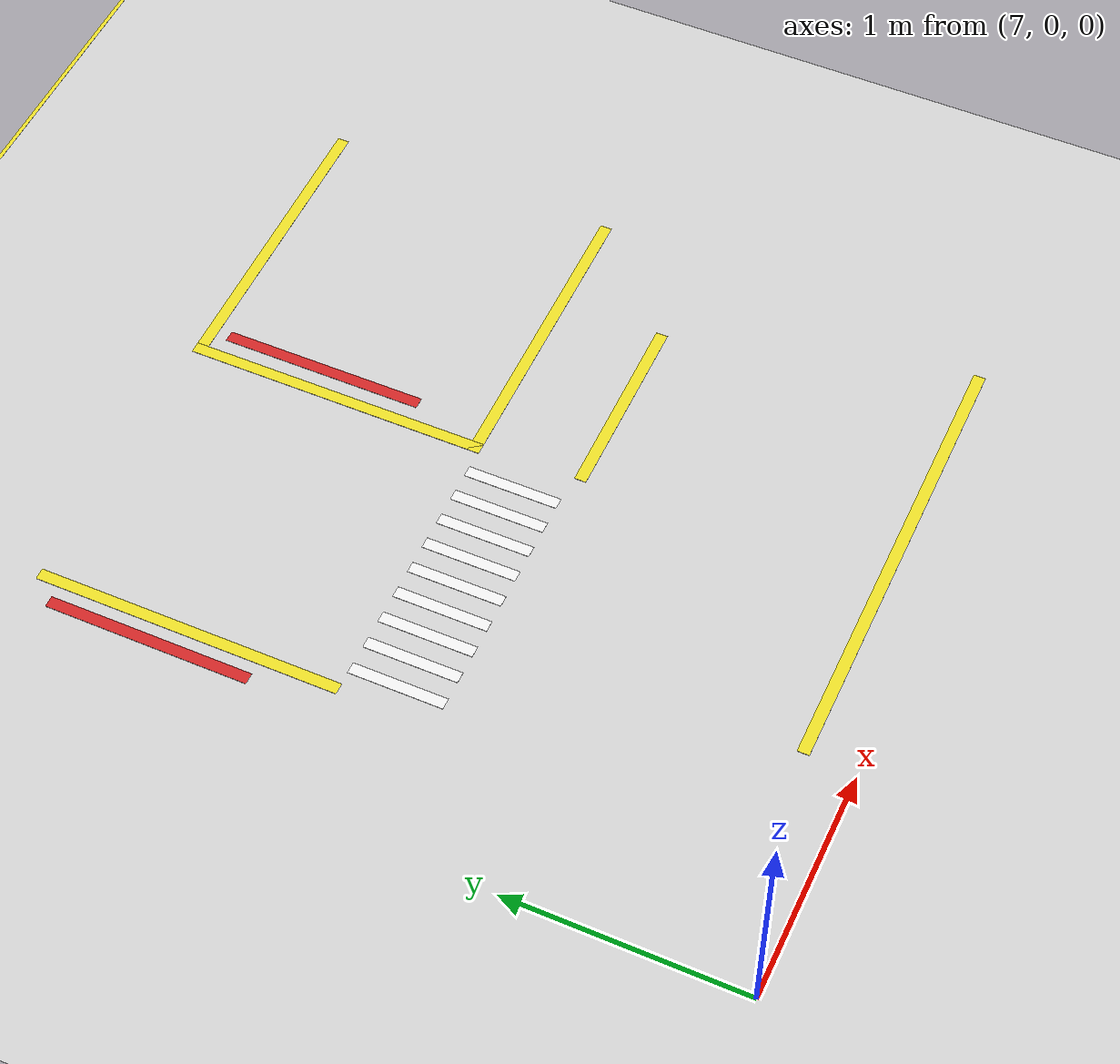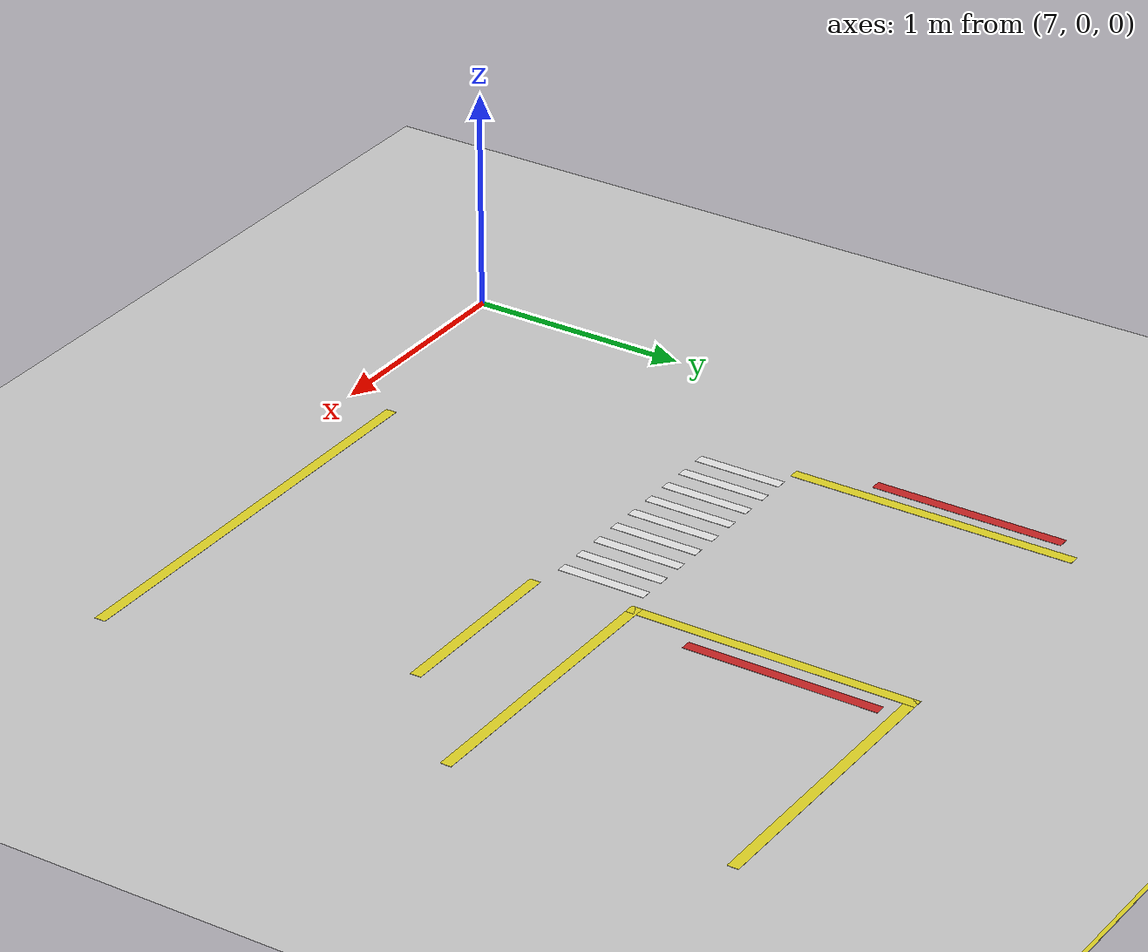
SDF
<sdf version="1.6">
 <world name="default">
  <model name="ground_plane">
   <static>1</static>
   <link name="link">
    <collision name="collision">
     <geometry><plane><normal>0 0 1</normal><size>100 100</size></plane></geometry>
     <surface><friction><ode><mu>100</mu><mu2>50</mu2></ode></friction></surface>
    </collision>
    <visual name="visual">
     <cast_shadows>0</cast_shadows>
     <geometry><plane><normal>0 0 1</normal><size>100 100</size></plane></geometry>
     <material>
      <script><uri>file://media/materials/scripts/gazebo.material</uri><name>Gazebo/Grey</name></script>
     </material>
    </visual>
   </link>
  </model>
  <model name="line2m_0">
   <link name="link_0">
    <inertial>
     <mass>1</mass>
     <inertia>
      <ixx>0.166667</ixx>
      <ixy>0</ixy>
      <ixz>0</ixz>
      <iyy>0.166667</iyy>
      <iyz>0</iyz>
      <izz>0.166667</izz>
     </inertia>
    </inertial>
    <visual name="visual">
     <geometry><box><size>2 0.05 0.001</size></box></geometry>
     <material>
      <lighting>1</lighting>
      <script><uri>file://media/materials/scripts/gazebo.material</uri><name>Gazebo/Yellow</name></script>
     </material>
    </visual>
    <collision name="collision">
     <geometry><box><size>2 0.05 1e-05</size></box></geometry>
     <surface>
      <friction>
       <ode><mu>1</mu><mu2>1</mu2><fdir1>0 0 0</fdir1><slip1>0</slip1><slip2>0</slip2></ode>
       <torsional>
        <coefficient>1</coefficient>
        <patch_radius>0</patch_radius>
        <surface_radius>0</surface_radius>
        <use_patch_radius>1</use_patch_radius>
        <ode><slip>0</slip></ode>
       </torsional>
      </friction>
      <bounce><restitution_coefficient>0</restitution_coefficient><threshold>1e+06</threshold></bounce>
      <contact>
       <collide_without_contact>0</collide_without_contact>
       <collide_without_contact_bitmask>1</collide_without_contact_bitmask>
       <collide_bitmask>1</collide_bitmask>
       <ode>
        <soft_cfm>0</soft_cfm>
        <soft_erp>0.2</soft_erp>
        <kp>1e+13</kp>
        <kd>1</kd>
        <max_vel>0.01</max_vel>
        <min_depth>0</min_depth>
       </ode>
       <bullet>
        <split_impulse>1</split_impulse>
        <split_impulse_penetration_threshold>-0.01</split_impulse_penetration_threshold>
        <soft_cfm>0</soft_cfm>
        <soft_erp>0.2</soft_erp>
        <kp>1e+13</kp>
        <kd>1</kd>
       </bullet>
      </contact>
     </surface>
    </collision>
   </link>
   <static>1</static>
   <pose>9.01723 0.22 0 0 -0 0</pose>
  </model>
  <model name="line9m">
   <link name="link_1">
    <inertial>
     <mass>1</mass>
     <inertia>
      <ixx>0.166667</ixx>
      <ixy>0</ixy>
      <ixz>0</ixz>
      <iyy>0.166667</iyy>
      <iyz>0</iyz>
      <izz>0.166667</izz>
     </inertia>
    </inertial>
    <visual name="visual">
     <geometry><box><size>9 0.05 0.001</size></box></geometry>
     <material>
      <lighting>1</lighting>
      <script><uri>file://media/materials/scripts/gazebo.material</uri><name>Gazebo/Yellow</name></script>
     </material>
    </visual>
   </link>
   <static>1</static>
   <pose>8.28674 4.52 0 0 -0 0</pose>
  </model>
  <model name="zebraCrossing9_0">
   <link name="link_0">
    <inertial>
     <mass>1</mass>
     <inertia>
      <ixx>0.166667</ixx>
      <ixy>0</ixy>
      <ixz>0</ixz>
      <iyy>0.166667</iyy>
      <iyz>0</iyz>
      <izz>0.166667</izz>
     </inertia>
    </inertial>
    <visual name="visual">
     <geometry><box><size>0.05 0.4 0.001</size></box></geometry>
     <material>
      <lighting>1</lighting>
      <script><uri>file://media/materials/scripts/gazebo.material</uri><name>Gazebo/White</name></script>
      <shader type="pixel"><normal_map>__default__</normal_map></shader>
      <ambient>1 1 1 1</ambient>
      <diffuse>1 1 1 1</diffuse>
      <specular>0.01 0.01 0.01 1</specular>
      <emissive>0 0 0 1</emissive>
     </material>
     <cast_shadows>0</cast_shadows>
    </visual>
    <visual name="ModelPreview_0::link_0::visual_1">
     <pose>0.13 0 0 0 -0 0</pose>
     <geometry><box><size>0.05 0.4 0.001</size></box></geometry>
     <material>
      <lighting>1</lighting>
      <script><uri>file://media/materials/scripts/gazebo.material</uri><name>Gazebo/White</name></script>
      <shader type="pixel"><normal_map>__default__</normal_map></shader>
      <ambient>1 1 1 1</ambient>
      <diffuse>1 1 1 1</diffuse>
      <specular>0.01 0.01 0.01 1</specular>
      <emissive>0 0 0 1</emissive>
     </material>
     <cast_shadows>0</cast_shadows>
    </visual>
    <visual name="ModelPreview_0::link_0::visual_2">
     <pose>0.26 0 0 0 -0 0</pose>
     <geometry><box><size>0.05 0.4 0.001</size></box></geometry>
     <material>
      <lighting>1</lighting>
      <script><uri>file://media/materials/scripts/gazebo.material</uri><name>Gazebo/White</name></script>
      <shader type="pixel"><normal_map>__default__</normal_map></shader>
      <ambient>1 1 1 1</ambient>
      <diffuse>1 1 1 1</diffuse>
      <specular>0.01 0.01 0.01 1</specular>
      <emissive>0 0 0 1</emissive>
     </material>
     <cast_shadows>0</cast_shadows>
    </visual>
    <visual name="ModelPreview_0::link_0::visual_3">
     <pose>0.39 0 0 0 -0 0</pose>
     <geometry><box><size>0.05 0.4 0.001</size></box></geometry>
     <material>
      <lighting>1</lighting>
      <script><uri>file://media/materials/scripts/gazebo.material</uri><name>Gazebo/White</name></script>
      <shader type="pixel"><normal_map>__default__</normal_map></shader>
      <ambient>1 1 1 1</ambient>
      <diffuse>1 1 1 1</diffuse>
      <specular>0.01 0.01 0.01 1</specular>
      <emissive>0 0 0 1</emissive>
     </material>
     <cast_shadows>0</cast_shadows>
    </visual>
    <visual name="ModelPreview_0::link_0::visual_4">
     <pose>0.52 0 0 0 -0 0</pose>
     <geometry><box><size>0.05 0.4 0.001</size></box></geometry>
     <material>
      <lighting>1</lighting>
      <script><uri>file://media/materials/scripts/gazebo.material</uri><name>Gazebo/White</name></script>
      <shader type="pixel"><normal_map>__default__</normal_map></shader>
      <ambient>1 1 1 1</ambient>
      <diffuse>1 1 1 1</diffuse>
      <specular>0.01 0.01 0.01 1</specular>
      <emissive>0 0 0 1</emissive>
     </material>
     <cast_shadows>0</cast_shadows>
    </visual>
    <visual name="ModelPreview_0::link_0::visual_5">
     <pose>-0.13 0 0 0 -0 0</pose>
     <geometry><box><size>0.05 0.4 0.001</size></box></geometry>
     <material>
      <lighting>1</lighting>
      <script><uri>file://media/materials/scripts/gazebo.material</uri><name>Gazebo/White</name></script>
      <shader type="pixel"><normal_map>__default__</normal_map></shader>
      <ambient>1 1 1 1</ambient>
      <diffuse>1 1 1 1</diffuse>
      <specular>0.01 0.01 0.01 1</specular>
      <emissive>0 0 0 1</emissive>
     </material>
     <cast_shadows>0</cast_shadows>
    </visual>
    <visual name="ModelPreview_0::link_0::visual_6">
     <pose>-0.26 0 0 0 -0 0</pose>
     <geometry><box><size>0.05 0.4 0.001</size></box></geometry>
     <material>
      <lighting>1</lighting>
      <script><uri>file://media/materials/scripts/gazebo.material</uri><name>Gazebo/White</name></script>
      <shader type="pixel"><normal_map>__default__</normal_map></shader>
      <ambient>1 1 1 1</ambient>
      <diffuse>1 1 1 1</diffuse>
      <specular>0.01 0.01 0.01 1</specular>
      <emissive>0 0 0 1</emissive>
     </material>
     <cast_shadows>0</cast_shadows>
    </visual>
    <visual name="ModelPreview_0::link_0::visual_7">
     <pose>-0.39 0 0 0 -0 0</pose>
     <geometry><box><size>0.05 0.4 0.001</size></box></geometry>
     <material>
      <lighting>1</lighting>
      <script><uri>file://media/materials/scripts/gazebo.material</uri><name>Gazebo/White</name></script>
      <shader type="pixel"><normal_map>__default__</normal_map></shader>
      <ambient>1 1 1 1</ambient>
      <diffuse>1 1 1 1</diffuse>
      <specular>0.01 0.01 0.01 1</specular>
      <emissive>0 0 0 1</emissive>
     </material>
     <cast_shadows>0</cast_shadows>
    </visual>
    <visual name="ModelPreview_0::link_0::visual_8">
     <pose>-0.52 0 0 0 -0 0</pose>
     <geometry><box><size>0.05 0.4 0.001</size></box></geometry>
     <material>
      <lighting>1</lighting>
      <script><uri>file://media/materials/scripts/gazebo.material</uri><name>Gazebo/White</name></script>
      <shader type="pixel"><normal_map>__default__</normal_map></shader>
      <ambient>1 1 1 1</ambient>
      <diffuse>1 1 1 1</diffuse>
      <specular>0.01 0.01 0.01 1</specular>
      <emissive>0 0 0 1</emissive>
     </material>
     <cast_shadows>0</cast_shadows>
    </visual>
   </link>
   <static>1</static>
   <pose>8.18674 1.72 0 0 -0 0</pose>
  </model>
  <model name="line134cm">
   <link name="link_1">
    <inertial>
     <mass>1</mass>
     <inertia>
      <ixx>0.166667</ixx>
      <ixy>0</ixy>
      <ixz>0</ixz>
      <iyy>0.166667</iyy>
      <iyz>0</iyz>
      <izz>0.166667</izz>
     </inertia>
    </inertial>
    <visual name="visual">
     <geometry><box><size>1.34 0.05 0.001</size></box></geometry>
     <material>
      <script><uri>file://media/materials/scripts/gazebo.material</uri><name>Gazebo/Yellow</name></script>
     </material>
    </visual>
    <collision name="collision">
     <geometry><box><size>1.34 0.05 1e-05</size></box></geometry>
     <surface>
      <friction>
       <ode><mu>1</mu><mu2>1</mu2><fdir1>0 0 0</fdir1><slip1>0</slip1><slip2>0</slip2></ode>
       <torsional>
        <coefficient>1</coefficient>
        <patch_radius>0</patch_radius>
        <surface_radius>0</surface_radius>
        <use_patch_radius>1</use_patch_radius>
        <ode><slip>0</slip></ode>
       </torsional>
      </friction>
      <bounce><restitution_coefficient>0</restitution_coefficient><threshold>1e+06</threshold></bounce>
      <contact>
       <collide_without_contact>0</collide_without_contact>
       <collide_without_contact_bitmask>1</collide_without_contact_bitmask>
       <collide_bitmask>1</collide_bitmask>
       <ode>
        <soft_cfm>0</soft_cfm>
        <soft_erp>0.2</soft_erp>
        <kp>1e+13</kp>
        <kd>1</kd>
        <max_vel>0.01</max_vel>
        <min_depth>0</min_depth>
       </ode>
       <bullet>
        <split_impulse>1</split_impulse>
        <split_impulse_penetration_threshold>-0.01</split_impulse_penetration_threshold>
        <soft_cfm>0</soft_cfm>
        <soft_erp>0.2</soft_erp>
        <kp>1e+13</kp>
        <kd>1</kd>
       </bullet>
      </contact>
     </surface>
    </collision>
   </link>
   <static>1</static>
   <pose>9.47674 1.94 0 0 -0 0</pose>
  </model>
  <model name="line134cm_0">
   <link name="link_1">
    <inertial>
     <mass>1</mass>
     <inertia>
      <ixx>0.166667</ixx>
      <ixy>0</ixy>
      <ixz>0</ixz>
      <iyy>0.166667</iyy>
      <iyz>0</iyz>
      <izz>0.166667</izz>
     </inertia>
    </inertial>
    <visual name="visual">
     <geometry><box><size>1.34 0.05 0.001</size></box></geometry>
     <material>
      <script><uri>file://media/materials/scripts/gazebo.material</uri><name>Gazebo/Yellow</name></script>
     </material>
    </visual>
    <collision name="collision">
     <geometry><box><size>1.34 0.05 1e-05</size></box></geometry>
     <surface>
      <friction>
       <ode><mu>1</mu><mu2>1</mu2><fdir1>0 0 0</fdir1><slip1>0</slip1><slip2>0</slip2></ode>
       <torsional>
        <coefficient>1</coefficient>
        <patch_radius>0</patch_radius>
        <surface_radius>0</surface_radius>
        <use_patch_radius>1</use_patch_radius>
        <ode><slip>0</slip></ode>
       </torsional>
      </friction>
      <bounce><restitution_coefficient>0</restitution_coefficient><threshold>1e+06</threshold></bounce>
      <contact>
       <collide_without_contact>0</collide_without_contact>
       <collide_without_contact_bitmask>1</collide_without_contact_bitmask>
       <collide_bitmask>1</collide_bitmask>
       <ode>
        <soft_cfm>0</soft_cfm>
        <soft_erp>0.2</soft_erp>
        <kp>1e+13</kp>
        <kd>1</kd>
        <max_vel>0.01</max_vel>
        <min_depth>0</min_depth>
       </ode>
       <bullet>
        <split_impulse>1</split_impulse>
        <split_impulse_penetration_threshold>-0.01</split_impulse_penetration_threshold>
        <soft_cfm>0</soft_cfm>
        <soft_erp>0.2</soft_erp>
        <kp>1e+13</kp>
        <kd>1</kd>
       </bullet>
      </contact>
     </surface>
    </collision>
   </link>
   <static>1</static>
   <pose>9.47674 3.19 0 0 -0 0</pose>
  </model>
  <model name="line130cm">
   <link name="link_1">
    <inertial>
     <mass>1</mass>
     <inertia>
      <ixx>0.166667</ixx>
      <ixy>0</ixy>
      <ixz>0</ixz>
      <iyy>0.166667</iyy>
      <iyz>0</iyz>
      <izz>0.166667</izz>
     </inertia>
    </inertial>
    <visual name="visual">
     <geometry><box><size>1.3 0.05 0.001</size></box></geometry>
     <material>
      <script><uri>file://media/materials/scripts/gazebo.material</uri><name>Gazebo/Yellow</name></script>
     </material>
    </visual>
    <collision name="collision">
     <geometry><box><size>1.3 0.05 1e-05</size></box></geometry>
     <surface>
      <friction>
       <ode><mu>1</mu><mu2>1</mu2><fdir1>0 0 0</fdir1><slip1>0</slip1><slip2>0</slip2></ode>
       <torsional>
        <coefficient>1</coefficient>
        <patch_radius>0</patch_radius>
        <surface_radius>0</surface_radius>
        <use_patch_radius>1</use_patch_radius>
        <ode><slip>0</slip></ode>
       </torsional>
      </friction>
      <bounce><restitution_coefficient>0</restitution_coefficient><threshold>1e+06</threshold></bounce>
      <contact>
       <collide_without_contact>0</collide_without_contact>
       <collide_without_contact_bitmask>1</collide_without_contact_bitmask>
       <collide_bitmask>1</collide_bitmask>
       <ode>
        <soft_cfm>0</soft_cfm>
        <soft_erp>0.2</soft_erp>
        <kp>1e+13</kp>
        <kd>1</kd>
        <max_vel>0.01</max_vel>
        <min_depth>0</min_depth>
       </ode>
       <bullet>
        <split_impulse>1</split_impulse>
        <split_impulse_penetration_threshold>-0.01</split_impulse_penetration_threshold>
        <soft_cfm>0</soft_cfm>
        <soft_erp>0.2</soft_erp>
        <kp>1e+13</kp>
        <kd>1</kd>
       </bullet>
      </contact>
     </surface>
    </collision>
   </link>
   <static>1</static>
   <pose>8.83174 2.565 0 0 -0 1.5708</pose>
  </model>
  <model name="line130cm_0">
   <link name="link_1">
    <inertial>
     <mass>1</mass>
     <inertia>
      <ixx>0.166667</ixx>
      <ixy>0</ixy>
      <ixz>0</ixz>
      <iyy>0.166667</iyy>
      <iyz>0</iyz>
      <izz>0.166667</izz>
     </inertia>
    </inertial>
    <visual name="visual">
     <geometry><box><size>1.3 0.05 0.001</size></box></geometry>
     <material>
      <script><uri>file://media/materials/scripts/gazebo.material</uri><name>Gazebo/Yellow</name></script>
     </material>
    </visual>
    <collision name="collision">
     <geometry><box><size>1.3 0.05 1e-05</size></box></geometry>
     <surface>
      <friction>
       <ode><mu>1</mu><mu2>1</mu2><fdir1>0 0 0</fdir1><slip1>0</slip1><slip2>0</slip2></ode>
       <torsional>
        <coefficient>1</coefficient>
        <patch_radius>0</patch_radius>
        <surface_radius>0</surface_radius>
        <use_patch_radius>1</use_patch_radius>
        <ode><slip>0</slip></ode>
       </torsional>
      </friction>
      <bounce><restitution_coefficient>0</restitution_coefficient><threshold>1e+06</threshold></bounce>
      <contact>
       <collide_without_contact>0</collide_without_contact>
       <collide_without_contact_bitmask>1</collide_without_contact_bitmask>
       <collide_bitmask>1</collide_bitmask>
       <ode>
        <soft_cfm>0</soft_cfm>
        <soft_erp>0.2</soft_erp>
        <kp>1e+13</kp>
        <kd>1</kd>
        <max_vel>0.01</max_vel>
        <min_depth>0</min_depth>
       </ode>
       <bullet>
        <split_impulse>1</split_impulse>
        <split_impulse_penetration_threshold>-0.01</split_impulse_penetration_threshold>
        <soft_cfm>0</soft_cfm>
        <soft_erp>0.2</soft_erp>
        <kp>1e+13</kp>
        <kd>1</kd>
       </bullet>
      </contact>
     </surface>
    </collision>
   </link>
   <static>1</static>
   <pose>7.56174 2.565 0 0 -0 1.5708</pose>
  </model>
  <model name="line87cm_clone">
   <link name="link_1">
    <inertial>
     <mass>1</mass>
     <inertia>
      <ixx>0.166667</ixx>
      <ixy>0</ixy>
      <ixz>0</ixz>
      <iyy>0.166667</iyy>
      <iyz>0</iyz>
      <izz>0.166667</izz>
     </inertia>
    </inertial>
    <visual name="visual">
     <geometry><box><size>0.87 0.05 0.001</size></box></geometry>
     <material>
      <script><uri>file://media/materials/scripts/gazebo.material</uri><name>Gazebo/Red</name></script>
     </material>
    </visual>
    <collision name="collision">
     <geometry><box><size>0.87 0.05 1e-05</size></box></geometry>
     <surface>
      <friction>
       <ode><mu>1</mu><mu2>1</mu2><fdir1>0 0 0</fdir1><slip1>0</slip1><slip2>0</slip2></ode>
       <torsional>
        <coefficient>1</coefficient>
        <patch_radius>0</patch_radius>
        <surface_radius>0</surface_radius>
        <use_patch_radius>1</use_patch_radius>
        <ode><slip>0</slip></ode>
       </torsional>
      </friction>
      <bounce><restitution_coefficient>0</restitution_coefficient><threshold>1e+06</threshold></bounce>
      <contact>
       <collide_without_contact>0</collide_without_contact>
       <collide_without_contact_bitmask>1</collide_without_contact_bitmask>
       <collide_bitmask>1</collide_bitmask>
       <ode>
        <soft_cfm>0</soft_cfm>
        <soft_erp>0.2</soft_erp>
        <kp>1e+13</kp>
        <kd>1</kd>
        <max_vel>0.01</max_vel>
        <min_depth>0</min_depth>
       </ode>
       <bullet>
        <split_impulse>1</split_impulse>
        <split_impulse_penetration_threshold>-0.01</split_impulse_penetration_threshold>
        <soft_cfm>0</soft_cfm>
        <soft_erp>0.2</soft_erp>
        <kp>1e+13</kp>
        <kd>1</kd>
       </bullet>
      </contact>
     </surface>
    </collision>
   </link>
   <static>1</static>
   <pose>7.46174 2.68 0 0 -0 1.5708</pose>
  </model>
  <model name="line87cm_1">
   <link name="link_1">
    <inertial>
     <mass>1</mass>
     <inertia>
      <ixx>0.166667</ixx>
      <ixy>0</ixy>
      <ixz>0</ixz>
      <iyy>0.166667</iyy>
      <iyz>0</iyz>
      <izz>0.166667</izz>
     </inertia>
    </inertial>
    <visual name="visual">
     <geometry><box><size>0.87 0.05 0.001</size></box></geometry>
     <material>
      <script><uri>file://media/materials/scripts/gazebo.material</uri><name>Gazebo/Red</name></script>
     </material>
    </visual>
    <collision name="collision">
     <geometry><box><size>0.87 0.05 1e-05</size></box></geometry>
     <surface>
      <friction>
       <ode><mu>1</mu><mu2>1</mu2><fdir1>0 0 0</fdir1><slip1>0</slip1><slip2>0</slip2></ode>
       <torsional>
        <coefficient>1</coefficient>
        <patch_radius>0</patch_radius>
        <surface_radius>0</surface_radius>
        <use_patch_radius>1</use_patch_radius>
        <ode><slip>0</slip></ode>
       </torsional>
      </friction>
      <bounce><restitution_coefficient>0</restitution_coefficient><threshold>1e+06</threshold></bounce>
      <contact>
       <collide_without_contact>0</collide_without_contact>
       <collide_without_contact_bitmask>1</collide_without_contact_bitmask>
       <collide_bitmask>1</collide_bitmask>
       <ode>
        <soft_cfm>0</soft_cfm>
        <soft_erp>0.2</soft_erp>
        <kp>1e+13</kp>
        <kd>1</kd>
        <max_vel>0.01</max_vel>
        <min_depth>0</min_depth>
       </ode>
       <bullet>
        <split_impulse>1</split_impulse>
        <split_impulse_penetration_threshold>-0.01</split_impulse_penetration_threshold>
        <soft_cfm>0</soft_cfm>
        <soft_erp>0.2</soft_erp>
        <kp>1e+13</kp>
        <kd>1</kd>
       </bullet>
      </contact>
     </surface>
    </collision>
   </link>
   <static>1</static>
   <pose>8.94174 2.68 0 0 -0 1.5708</pose>
  </model>
  <model name="line_84">
   <link name="link_8">
    <inertial>
     <mass>1</mass>
     <inertia>
      <ixx>0.166667</ixx>
      <ixy>0</ixy>
      <ixz>0</ixz>
      <iyy>0.166667</iyy>
      <iyz>0</iyz>
      <izz>0.166667</izz>
     </inertia>
    </inertial>
    <visual name="visual">
     <geometry><box><size>0.05 0.84 0.001</size></box></geometry>
     <material>
      <lighting>1</lighting>
      <script><uri>file://media/materials/scripts/gazebo.material</uri><name>Gazebo/Yellow</name></script>
     </material>
    </visual>
    <collision name="collision">
     <geometry><box><size>0.05 0.84 0.001</size></box></geometry>
     <surface>
      <friction>
       <ode><mu>1</mu><mu2>1</mu2><fdir1>0 0 0</fdir1><slip1>0</slip1><slip2>0</slip2></ode>
       <torsional>
        <coefficient>1</coefficient>
        <patch_radius>0</patch_radius>
        <surface_radius>0</surface_radius>
        <use_patch_radius>1</use_patch_radius>
        <ode><slip>0</slip></ode>
       </torsional>
      </friction>
      <bounce><restitution_coefficient>0</restitution_coefficient><threshold>1e+06</threshold></bounce>
      <contact>
       <collide_without_contact>0</collide_without_contact>
       <collide_without_contact_bitmask>1</collide_without_contact_bitmask>
       <collide_bitmask>1</collide_bitmask>
       <ode>
        <soft_cfm>0</soft_cfm>
        <soft_erp>0.2</soft_erp>
        <kp>1e+13</kp>
        <kd>1</kd>
        <max_vel>0.01</max_vel>
        <min_depth>0</min_depth>
       </ode>
       <bullet>
        <split_impulse>1</split_impulse>
        <split_impulse_penetration_threshold>-0.01</split_impulse_penetration_threshold>
        <soft_cfm>0</soft_cfm>
        <soft_erp>0.2</soft_erp>
        <kp>1e+13</kp>
        <kd>1</kd>
       </bullet>
      </contact>
     </surface>
    </collision>
   </link>
   <static>1</static>
   <pose>9.27 1.49 0 0 -0 1.5708</pose>
  </model>
 </world>
</sdf>
